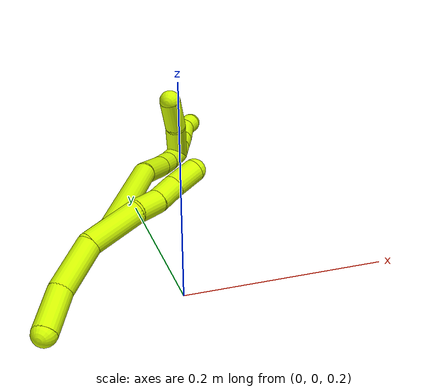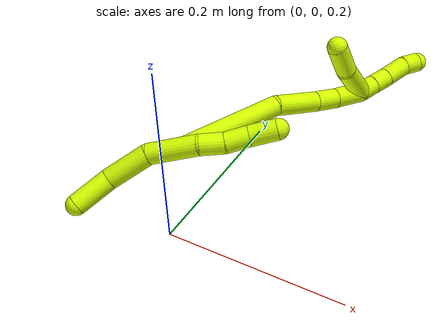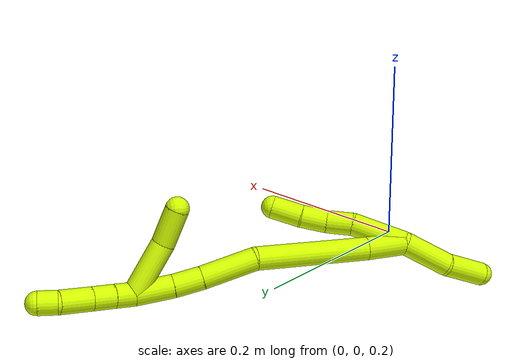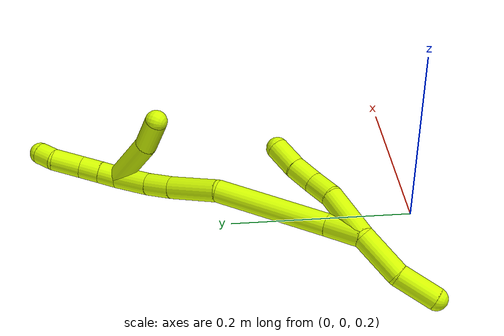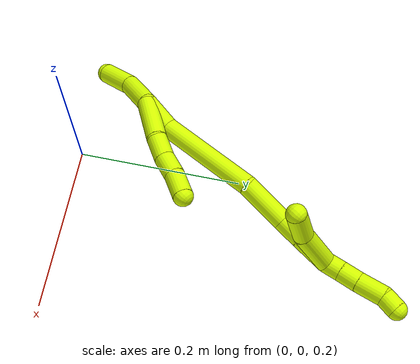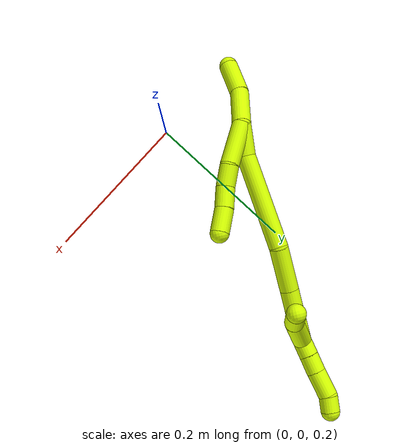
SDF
<sdf version="1.7">
 <world name="default">
  <model name="photoneo_s_sensor">
   <static>1</static>
   <pose>0 0 2 1.57079 1.57079 3.14159</pose>
   <link name="link">
    <inertial><mass>0.1</mass></inertial>
    <sensor name="sensor" type="depth">
     <update_rate>30</update_rate>
     <camera>
      <horizontal_fov>1.22</horizontal_fov>
      <image><width>1920</width><height>1200</height><format>B8G8R8</format></image>
      <clip><near>0.1</near><far>4</far></clip>
      <depth_camera><output>points</output></depth_camera>
     </camera>
     <plugin name="camera_plugin" filename="libgazebo_ros_depth_camera.so">
      <baseline>0.2</baseline>
      <alwaysOn>1</alwaysOn>
      <updateRate>0.0</updateRate>
      <cameraName>camera_ir</cameraName>
      <imageTopicName>/camera/color/image_raw</imageTopicName>
      <cameraInfoTopicName>/camera/color/camera_info</cameraInfoTopicName>
      <depthImageTopicName>/camera/depth/image_raw</depthImageTopicName>
      <depthImageCameraInfoTopicName>/camera/depth/camera_info</depthImageCameraInfoTopicName>
      <pointCloudTopicName>/camera/depth/points</pointCloudTopicName>
      <frameName>fr_optical</frameName>
      <pointCloudCutoff>0.1</pointCloudCutoff>
      <pointCloudCutoffMax>2.0</pointCloudCutoffMax>
      <distortionK1>0</distortionK1>
      <distortionK2>0</distortionK2>
      <distortionK3>0</distortionK3>
      <distortionT1>0</distortionT1>
      <distortionT2>0</distortionT2>
      <CxPrime>0</CxPrime>
      <Cx>0</Cx>
      <Cy>0</Cy>
      <focalLength>0</focalLength>
      <hackBaseline>0</hackBaseline>
     </plugin>
    </sensor>
   </link>
  </model>
  <model name="bin">
   <static>1</static>
   <link name="bottom">
    <collision name="collision-bottom">
     <pose>0 0 -0.01 0 -0 0</pose>
     <geometry><box><size>0.8 0.6 0.02</size></box></geometry>
     <surface>
      <friction><ode><mu>100</mu><mu2>100</mu2></ode></friction>
      <contact><collide_bitmask>65535</collide_bitmask></contact>
     </surface>
    </collision>
   </link>
   <link name="west_wall">
    <collision name="collision-west_wall">
     <pose>-0.41 0 0.1 0 -0 0</pose>
     <geometry><box><size>0.02 0.6 0.2</size></box></geometry>
     <surface>
      <friction><ode><mu>100</mu><mu2>100</mu2></ode></friction>
      <contact><collide_bitmask>65535</collide_bitmask></contact>
     </surface>
    </collision>
   </link>
   <link name="east_wall">
    <collision name="collision-east_wall">
     <pose>0.41 0 0.1 0 -0 0</pose>
     <geometry><box><size>0.02 0.6 0.2</size></box></geometry>
     <surface>
      <friction><ode><mu>100</mu><mu2>100</mu2></ode></friction>
      <contact><collide_bitmask>65535</collide_bitmask></contact>
     </surface>
    </collision>
   </link>
   <link name="south_wall">
    <collision name="collision-south_wall">
     <pose>0 -0.31 0.1 0 -0 0</pose>
     <geometry><box><size>0.8 0.02 0.2</size></box></geometry>
     <surface>
      <friction><ode><mu>100</mu><mu2>100</mu2></ode></friction>
      <contact><collide_bitmask>65535</collide_bitmask></contact>
     </surface>
    </collision>
   </link>
   <link name="north_wall">
    <collision name="collision-north_wall">
     <pose>0 0.31 0.1 0 -0 0</pose>
     <geometry><box><size>0.8 0.02 0.2</size></box></geometry>
     <surface>
      <friction><ode><mu>100</mu><mu2>100</mu2></ode></friction>
      <contact><collide_bitmask>65535</collide_bitmask></contact>
     </surface>
    </collision>
   </link>
  </model>
  <model name="15">
   <static>0</static>
   <link name="15">
    <collision name="collision-cylinder-e_1_2_8">
     <pose>0.006834 -0.014354 0.025186 0.518022 0.231509 0.061597</pose>
     <geometry><cylinder><radius>0.0125</radius><length>0.059567</length></cylinder></geometry>
     <surface>
      <friction><ode><mu>1.16</mu><mu2>1.16</mu2><slip1>0</slip1><slip2>0</slip2></ode></friction>
      <contact><ode><kp>1e+06</kp><kd>1</kd><max_vel>0</max_vel><min_depth>0.001</min_depth></ode></contact>
     </surface>
    </collision>
    <visual name="visual-cylinder-e_1_2_8">
     <pose>0.006834 -0.014354 0.025186 0.518022 0.231509 0.061597</pose>
     <geometry><cylinder><radius>0.0125</radius><length>0.059567</length></cylinder></geometry>
     <material><ambient>0.835294 1 0 1</ambient></material>
    </visual>
    <collision name="collision-cylinder-e_2_8_9">
     <pose>0.018208 -0.032513 0.063602 0.280012 0.318568 0.045271</pose>
     <geometry><cylinder><radius>0.0125</radius><length>0.028993</length></cylinder></geometry>
     <surface>
      <friction><ode><mu>1.16</mu><mu2>1.16</mu2><slip1>0</slip1><slip2>0</slip2></ode></friction>
      <contact><ode><kp>1e+06</kp><kd>1</kd><max_vel>0</max_vel><min_depth>0.001</min_depth></ode></contact>
     </surface>
    </collision>
    <visual name="visual-cylinder-e_2_8_9">
     <pose>0.018208 -0.032513 0.063602 0.280012 0.318568 0.045271</pose>
     <geometry><cylinder><radius>0.0125</radius><length>0.028993</length></cylinder></geometry>
     <material><ambient>0.835294 1 0 1</ambient></material>
    </visual>
    <collision name="collision-cylinder-e_3_9_10">
     <pose>0.024357 -0.040816 0.090288 0.32261 0.112934 0.018395</pose>
     <geometry><cylinder><radius>0.0125</radius><length>0.028557</length></cylinder></geometry>
     <surface>
      <friction><ode><mu>1.16</mu><mu2>1.16</mu2><slip1>0</slip1><slip2>0</slip2></ode></friction>
      <contact><ode><kp>1e+06</kp><kd>1</kd><max_vel>0</max_vel><min_depth>0.001</min_depth></ode></contact>
     </surface>
    </collision>
    <visual name="visual-cylinder-e_3_9_10">
     <pose>0.024357 -0.040816 0.090288 0.32261 0.112934 0.018395</pose>
     <geometry><cylinder><radius>0.0125</radius><length>0.028557</length></cylinder></geometry>
     <material><ambient>0.835294 1 0 1</ambient></material>
    </visual>
    <collision name="collision-cylinder-e_4_10_6">
     <pose>0.028786 -0.052323 0.118347 0.447506 0.172345 0.039312</pose>
     <geometry><cylinder><radius>0.0125</radius><length>0.032884</length></cylinder></geometry>
     <surface>
      <friction><ode><mu>1.16</mu><mu2>1.16</mu2><slip1>0</slip1><slip2>0</slip2></ode></friction>
      <contact><ode><kp>1e+06</kp><kd>1</kd><max_vel>0</max_vel><min_depth>0.001</min_depth></ode></contact>
     </surface>
    </collision>
    <visual name="visual-cylinder-e_4_10_6">
     <pose>0.028786 -0.052323 0.118347 0.447506 0.172345 0.039312</pose>
     <geometry><cylinder><radius>0.0125</radius><length>0.032884</length></cylinder></geometry>
     <material><ambient>0.835294 1 0 1</ambient></material>
    </visual>
    <collision name="collision-cylinder-e_1_2_11">
     <pose>0.004023 0.01257 -0.023345 -2.64767 0.150572 -0.581429</pose>
     <geometry><cylinder><radius>0.0125</radius><length>0.053634</length></cylinder></geometry>
     <surface>
      <friction><ode><mu>1.16</mu><mu2>1.16</mu2><slip1>0</slip1><slip2>0</slip2></ode></friction>
      <contact><ode><kp>1e+06</kp><kd>1</kd><max_vel>0</max_vel><min_depth>0.001</min_depth></ode></contact>
     </surface>
    </collision>
    <visual name="visual-cylinder-e_1_2_11">
     <pose>0.004023 0.01257 -0.023345 -2.64767 0.150572 -0.581429</pose>
     <geometry><cylinder><radius>0.0125</radius><length>0.053634</length></cylinder></geometry>
     <material><ambient>0.835294 1 0 1</ambient></material>
    </visual>
    <collision name="collision-cylinder-e_2_11_5">
     <pose>0.014863 0.030091 -0.068287 -2.9162 0.298491 -1.85117</pose>
     <geometry><cylinder><radius>0.0125</radius><length>0.046366</length></cylinder></geometry>
     <surface>
      <friction><ode><mu>1.16</mu><mu2>1.16</mu2><slip1>0</slip1><slip2>0</slip2></ode></friction>
      <contact><ode><kp>1e+06</kp><kd>1</kd><max_vel>0</max_vel><min_depth>0.001</min_depth></ode></contact>
     </surface>
    </collision>
    <visual name="visual-cylinder-e_2_11_5">
     <pose>0.014863 0.030091 -0.068287 -2.9162 0.298491 -1.85117</pose>
     <geometry><cylinder><radius>0.0125</radius><length>0.046366</length></cylinder></geometry>
     <material><ambient>0.835294 1 0 1</ambient></material>
    </visual>
    <collision name="collision-cylinder-e_1_2_12">
     <pose>0.003 0.000794 0.02095 -0.037898 0.142124 -0.002698</pose>
     <geometry><cylinder><radius>0.0125</radius><length>0.042358</length></cylinder></geometry>
     <surface>
      <friction><ode><mu>1.16</mu><mu2>1.16</mu2><slip1>0</slip1><slip2>0</slip2></ode></friction>
      <contact><ode><kp>1e+06</kp><kd>1</kd><max_vel>0</max_vel><min_depth>0.001</min_depth></ode></contact>
     </surface>
    </collision>
    <visual name="visual-cylinder-e_1_2_12">
     <pose>0.003 0.000794 0.02095 -0.037898 0.142124 -0.002698</pose>
     <geometry><cylinder><radius>0.0125</radius><length>0.042358</length></cylinder></geometry>
     <material><ambient>0.835294 1 0 1</ambient></material>
    </visual>
    <collision name="collision-cylinder-e_2_12_13">
     <pose>0.000348 0.004458 0.10496 -0.045468 -0.089296 0.002032</pose>
     <geometry><cylinder><radius>0.0125</radius><length>0.126755</length></cylinder></geometry>
     <surface>
      <friction><ode><mu>1.16</mu><mu2>1.16</mu2><slip1>0</slip1><slip2>0</slip2></ode></friction>
      <contact><ode><kp>1e+06</kp><kd>1</kd><max_vel>0</max_vel><min_depth>0.001</min_depth></ode></contact>
     </surface>
    </collision>
    <visual name="visual-cylinder-e_2_12_13">
     <pose>0.000348 0.004458 0.10496 -0.045468 -0.089296 0.002032</pose>
     <geometry><cylinder><radius>0.0125</radius><length>0.126755</length></cylinder></geometry>
     <material><ambient>0.835294 1 0 1</ambient></material>
    </visual>
    <collision name="collision-cylinder-e_3_13_14">
     <pose>-0.000762 0.014388 0.196419 -0.243687 0.153966 -0.01889</pose>
     <geometry><cylinder><radius>0.0125</radius><length>0.059228</length></cylinder></geometry>
     <surface>
      <friction><ode><mu>1.16</mu><mu2>1.16</mu2><slip1>0</slip1><slip2>0</slip2></ode></friction>
      <contact><ode><kp>1e+06</kp><kd>1</kd><max_vel>0</max_vel><min_depth>0.001</min_depth></ode></contact>
     </surface>
    </collision>
    <visual name="visual-cylinder-e_3_13_14">
     <pose>-0.000762 0.014388 0.196419 -0.243687 0.153966 -0.01889</pose>
     <geometry><cylinder><radius>0.0125</radius><length>0.059228</length></cylinder></geometry>
     <material><ambient>0.835294 1 0 1</ambient></material>
    </visual>
    <collision name="collision-cylinder-e_4_14_15">
     <pose>0.005654 0.024264 0.2398 -0.185774 0.122396 -0.011416</pose>
     <geometry><cylinder><radius>0.0125</radius><length>0.030719</length></cylinder></geometry>
     <surface>
      <friction><ode><mu>1.16</mu><mu2>1.16</mu2><slip1>0</slip1><slip2>0</slip2></ode></friction>
      <contact><ode><kp>1e+06</kp><kd>1</kd><max_vel>0</max_vel><min_depth>0.001</min_depth></ode></contact>
     </surface>
    </collision>
    <visual name="visual-cylinder-e_4_14_15">
     <pose>0.005654 0.024264 0.2398 -0.185774 0.122396 -0.011416</pose>
     <geometry><cylinder><radius>0.0125</radius><length>0.030719</length></cylinder></geometry>
     <material><ambient>0.835294 1 0 1</ambient></material>
    </visual>
    <collision name="collision-cylinder-e_5_15_1">
     <pose>0.008926 0.029448 0.275068 -0.116208 0.068268 -0.003973</pose>
     <geometry><cylinder><radius>0.0125</radius><length>0.04094</length></cylinder></geometry>
     <surface>
      <friction><ode><mu>1.16</mu><mu2>1.16</mu2><slip1>0</slip1><slip2>0</slip2></ode></friction>
      <contact><ode><kp>1e+06</kp><kd>1</kd><max_vel>0</max_vel><min_depth>0.001</min_depth></ode></contact>
     </surface>
    </collision>
    <visual name="visual-cylinder-e_5_15_1">
     <pose>0.008926 0.029448 0.275068 -0.116208 0.068268 -0.003973</pose>
     <geometry><cylinder><radius>0.0125</radius><length>0.04094</length></cylinder></geometry>
     <material><ambient>0.835294 1 0 1</ambient></material>
    </visual>
    <collision name="collision-cylinder-e_1_1_16">
     <pose>0.00846 0.0326 0.305753 -0.07526 -0.176717 0.00667</pose>
     <geometry><cylinder><radius>0.0125</radius><length>0.02119</length></cylinder></geometry>
     <surface>
      <friction><ode><mu>1.16</mu><mu2>1.16</mu2><slip1>0</slip1><slip2>0</slip2></ode></friction>
      <contact><ode><kp>1e+06</kp><kd>1</kd><max_vel>0</max_vel><min_depth>0.001</min_depth></ode></contact>
     </surface>
    </collision>
    <visual name="visual-cylinder-e_1_1_16">
     <pose>0.00846 0.0326 0.305753 -0.07526 -0.176717 0.00667</pose>
     <geometry><cylinder><radius>0.0125</radius><length>0.02119</length></cylinder></geometry>
     <material><ambient>0.835294 1 0 1</ambient></material>
    </visual>
    <collision name="collision-cylinder-e_2_16_17">
     <pose>0.004718 0.034334 0.327762 -0.081628 -0.159956 0.006546</pose>
     <geometry><cylinder><radius>0.0125</radius><length>0.023597</length></cylinder></geometry>
     <surface>
      <friction><ode><mu>1.16</mu><mu2>1.16</mu2><slip1>0</slip1><slip2>0</slip2></ode></friction>
      <contact><ode><kp>1e+06</kp><kd>1</kd><max_vel>0</max_vel><min_depth>0.001</min_depth></ode></contact>
     </surface>
    </collision>
    <visual name="visual-cylinder-e_2_16_17">
     <pose>0.004718 0.034334 0.327762 -0.081628 -0.159956 0.006546</pose>
     <geometry><cylinder><radius>0.0125</radius><length>0.023597</length></cylinder></geometry>
     <material><ambient>0.835294 1 0 1</ambient></material>
    </visual>
    <collision name="collision-cylinder-e_3_17_18">
     <pose>-0.000807 0.036717 0.356171 -0.085074 -0.212931 0.009097</pose>
     <geometry><cylinder><radius>0.0125</radius><length>0.0345</length></cylinder></geometry>
     <surface>
      <friction><ode><mu>1.16</mu><mu2>1.16</mu2><slip1>0</slip1><slip2>0</slip2></ode></friction>
      <contact><ode><kp>1e+06</kp><kd>1</kd><max_vel>0</max_vel><min_depth>0.001</min_depth></ode></contact>
     </surface>
    </collision>
    <visual name="visual-cylinder-e_3_17_18">
     <pose>-0.000807 0.036717 0.356171 -0.085074 -0.212931 0.009097</pose>
     <geometry><cylinder><radius>0.0125</radius><length>0.0345</length></cylinder></geometry>
     <material><ambient>0.835294 1 0 1</ambient></material>
    </visual>
    <collision name="collision-cylinder-e_4_18_4">
     <pose>-0.003644 0.037549 0.383278 0.058209 0.078051 0.002273</pose>
     <geometry><cylinder><radius>0.0125</radius><length>0.020713</length></cylinder></geometry>
     <surface>
      <friction><ode><mu>1.16</mu><mu2>1.16</mu2><slip1>0</slip1><slip2>0</slip2></ode></friction>
      <contact><ode><kp>1e+06</kp><kd>1</kd><max_vel>0</max_vel><min_depth>0.001</min_depth></ode></contact>
     </surface>
    </collision>
    <visual name="visual-cylinder-e_4_18_4">
     <pose>-0.003644 0.037549 0.383278 0.058209 0.078051 0.002273</pose>
     <geometry><cylinder><radius>0.0125</radius><length>0.020713</length></cylinder></geometry>
     <material><ambient>0.835294 1 0 1</ambient></material>
    </visual>
    <collision name="collision-cylinder-e_1_1_19">
     <pose>-0.002057 0.009426 0.279749 2.17941 -0.425855 -0.785354</pose>
     <geometry><cylinder><radius>0.0125</radius><length>0.059933</length></cylinder></geometry>
     <surface>
      <friction><ode><mu>1.16</mu><mu2>1.16</mu2><slip1>0</slip1><slip2>0</slip2></ode></friction>
      <contact><ode><kp>1e+06</kp><kd>1</kd><max_vel>0</max_vel><min_depth>0.001</min_depth></ode></contact>
     </surface>
    </collision>
    <visual name="visual-cylinder-e_1_1_19">
     <pose>-0.002057 0.009426 0.279749 2.17941 -0.425855 -0.785354</pose>
     <geometry><cylinder><radius>0.0125</radius><length>0.059933</length></cylinder></geometry>
     <material><ambient>0.835294 1 0 1</ambient></material>
    </visual>
    <collision name="collision-cylinder-e_2_19_3">
     <pose>-0.026803 -0.027102 0.257182 2.02855 -0.665319 -1.01391</pose>
     <geometry><cylinder><radius>0.0125</radius><length>0.040067</length></cylinder></geometry>
     <surface>
      <friction><ode><mu>1.16</mu><mu2>1.16</mu2><slip1>0</slip1><slip2>0</slip2></ode></friction>
      <contact><ode><kp>1e+06</kp><kd>1</kd><max_vel>0</max_vel><min_depth>0.001</min_depth></ode></contact>
     </surface>
    </collision>
    <visual name="visual-cylinder-e_2_19_3">
     <pose>-0.026803 -0.027102 0.257182 2.02855 -0.665319 -1.01391</pose>
     <geometry><cylinder><radius>0.0125</radius><length>0.040067</length></cylinder></geometry>
     <material><ambient>0.835294 1 0 1</ambient></material>
    </visual>
    <collision name="collision-sphere-3">
     <pose>-0.03917 -0.04124 0.250216 0 -0 0</pose>
     <geometry><sphere><radius>0.0125</radius></sphere></geometry>
     <surface>
      <friction><ode><mu>1.16</mu><mu2>1.16</mu2><slip1>0</slip1><slip2>0</slip2></ode></friction>
      <contact><ode><kp>1e+06</kp><kd>1</kd><max_vel>0</max_vel><min_depth>0.001</min_depth></ode></contact>
     </surface>
    </collision>
    <visual name="visual-sphere-3">
     <pose>-0.03917 -0.04124 0.250216 0 -0 0</pose>
     <geometry><sphere><radius>0.0125</radius></sphere></geometry>
     <material><ambient>0.835294 1 0 1</ambient></material>
    </visual>
    <collision name="collision-sphere-19">
     <pose>-0.014436 -0.012964 0.264147 0 -0 0</pose>
     <geometry><sphere><radius>0.0125</radius></sphere></geometry>
     <surface>
      <friction><ode><mu>1.16</mu><mu2>1.16</mu2><slip1>0</slip1><slip2>0</slip2></ode></friction>
      <contact><ode><kp>1e+06</kp><kd>1</kd><max_vel>0</max_vel><min_depth>0.001</min_depth></ode></contact>
     </surface>
    </collision>
    <visual name="visual-sphere-19">
     <pose>-0.014436 -0.012964 0.264147 0 -0 0</pose>
     <geometry><sphere><radius>0.0125</radius></sphere></geometry>
     <material><ambient>0.835294 1 0 1</ambient></material>
    </visual>
    <collision name="collision-sphere-11">
     <pose>0.008045 0.025139 -0.046689 0 -0 0</pose>
     <geometry><sphere><radius>0.0125</radius></sphere></geometry>
     <surface>
      <friction><ode><mu>1.16</mu><mu2>1.16</mu2><slip1>0</slip1><slip2>0</slip2></ode></friction>
      <contact><ode><kp>1e+06</kp><kd>1</kd><max_vel>0</max_vel><min_depth>0.001</min_depth></ode></contact>
     </surface>
    </collision>
    <visual name="visual-sphere-11">
     <pose>0.008045 0.025139 -0.046689 0 -0 0</pose>
     <geometry><sphere><radius>0.0125</radius></sphere></geometry>
     <material><ambient>0.835294 1 0 1</ambient></material>
    </visual>
    <collision name="collision-sphere-6">
     <pose>0.031606 -0.059333 0.13295 0 -0 0</pose>
     <geometry><sphere><radius>0.0125</radius></sphere></geometry>
     <surface>
      <friction><ode><mu>1.16</mu><mu2>1.16</mu2><slip1>0</slip1><slip2>0</slip2></ode></friction>
      <contact><ode><kp>1e+06</kp><kd>1</kd><max_vel>0</max_vel><min_depth>0.001</min_depth></ode></contact>
     </surface>
    </collision>
    <visual name="visual-sphere-6">
     <pose>0.031606 -0.059333 0.13295 0 -0 0</pose>
     <geometry><sphere><radius>0.0125</radius></sphere></geometry>
     <material><ambient>0.835294 1 0 1</ambient></material>
    </visual>
    <collision name="collision-sphere-10">
     <pose>0.025966 -0.045314 0.103744 0 -0 0</pose>
     <geometry><sphere><radius>0.0125</radius></sphere></geometry>
     <surface>
      <friction><ode><mu>1.16</mu><mu2>1.16</mu2><slip1>0</slip1><slip2>0</slip2></ode></friction>
      <contact><ode><kp>1e+06</kp><kd>1</kd><max_vel>0</max_vel><min_depth>0.001</min_depth></ode></contact>
     </surface>
    </collision>
    <visual name="visual-sphere-10">
     <pose>0.025966 -0.045314 0.103744 0 -0 0</pose>
     <geometry><sphere><radius>0.0125</radius></sphere></geometry>
     <material><ambient>0.835294 1 0 1</ambient></material>
    </visual>
    <collision name="collision-sphere-9">
     <pose>0.022748 -0.036318 0.076833 0 -0 0</pose>
     <geometry><sphere><radius>0.0125</radius></sphere></geometry>
     <surface>
      <friction><ode><mu>1.16</mu><mu2>1.16</mu2><slip1>0</slip1><slip2>0</slip2></ode></friction>
      <contact><ode><kp>1e+06</kp><kd>1</kd><max_vel>0</max_vel><min_depth>0.001</min_depth></ode></contact>
     </surface>
    </collision>
    <visual name="visual-sphere-9">
     <pose>0.022748 -0.036318 0.076833 0 -0 0</pose>
     <geometry><sphere><radius>0.0125</radius></sphere></geometry>
     <material><ambient>0.835294 1 0 1</ambient></material>
    </visual>
    <collision name="collision-sphere-2">
     <geometry><sphere><radius>0.0125</radius></sphere></geometry>
     <surface>
      <friction><ode><mu>1.16</mu><mu2>1.16</mu2><slip1>0</slip1><slip2>0</slip2></ode></friction>
      <contact><ode><kp>1e+06</kp><kd>1</kd><max_vel>0</max_vel><min_depth>0.001</min_depth></ode></contact>
     </surface>
    </collision>
    <visual name="visual-sphere-2">
     <geometry><sphere><radius>0.0125</radius></sphere></geometry>
     <material><ambient>0.835294 1 0 1</ambient></material>
    </visual>
    <collision name="collision-sphere-8">
     <pose>0.013667 -0.028709 0.050371 0 -0 0</pose>
     <geometry><sphere><radius>0.0125</radius></sphere></geometry>
     <surface>
      <friction><ode><mu>1.16</mu><mu2>1.16</mu2><slip1>0</slip1><slip2>0</slip2></ode></friction>
      <contact><ode><kp>1e+06</kp><kd>1</kd><max_vel>0</max_vel><min_depth>0.001</min_depth></ode></contact>
     </surface>
    </collision>
    <visual name="visual-sphere-8">
     <pose>0.013667 -0.028709 0.050371 0 -0 0</pose>
     <geometry><sphere><radius>0.0125</radius></sphere></geometry>
     <material><ambient>0.835294 1 0 1</ambient></material>
    </visual>
    <collision name="collision-sphere-5">
     <pose>0.021681 0.035043 -0.089884 0 -0 0</pose>
     <geometry><sphere><radius>0.0125</radius></sphere></geometry>
     <surface>
      <friction><ode><mu>1.16</mu><mu2>1.16</mu2><slip1>0</slip1><slip2>0</slip2></ode></friction>
      <contact><ode><kp>1e+06</kp><kd>1</kd><max_vel>0</max_vel><min_depth>0.001</min_depth></ode></contact>
     </surface>
    </collision>
    <visual name="visual-sphere-5">
     <pose>0.021681 0.035043 -0.089884 0 -0 0</pose>
     <geometry><sphere><radius>0.0125</radius></sphere></geometry>
     <material><ambient>0.835294 1 0 1</ambient></material>
    </visual>
    <collision name="collision-sphere-12">
     <pose>0.006 0.001589 0.0419 0 -0 0</pose>
     <geometry><sphere><radius>0.0125</radius></sphere></geometry>
     <surface>
      <friction><ode><mu>1.16</mu><mu2>1.16</mu2><slip1>0</slip1><slip2>0</slip2></ode></friction>
      <contact><ode><kp>1e+06</kp><kd>1</kd><max_vel>0</max_vel><min_depth>0.001</min_depth></ode></contact>
     </surface>
    </collision>
    <visual name="visual-sphere-12">
     <pose>0.006 0.001589 0.0419 0 -0 0</pose>
     <geometry><sphere><radius>0.0125</radius></sphere></geometry>
     <material><ambient>0.835294 1 0 1</ambient></material>
    </visual>
    <collision name="collision-sphere-13">
     <pose>-0.005304 0.007327 0.16802 0 -0 0</pose>
     <geometry><sphere><radius>0.0125</radius></sphere></geometry>
     <surface>
      <friction><ode><mu>1.16</mu><mu2>1.16</mu2><slip1>0</slip1><slip2>0</slip2></ode></friction>
      <contact><ode><kp>1e+06</kp><kd>1</kd><max_vel>0</max_vel><min_depth>0.001</min_depth></ode></contact>
     </surface>
    </collision>
    <visual name="visual-sphere-13">
     <pose>-0.005304 0.007327 0.16802 0 -0 0</pose>
     <geometry><sphere><radius>0.0125</radius></sphere></geometry>
     <material><ambient>0.835294 1 0 1</ambient></material>
    </visual>
    <collision name="collision-sphere-14">
     <pose>0.003779 0.021449 0.224818 0 -0 0</pose>
     <geometry><sphere><radius>0.0125</radius></sphere></geometry>
     <surface>
      <friction><ode><mu>1.16</mu><mu2>1.16</mu2><slip1>0</slip1><slip2>0</slip2></ode></friction>
      <contact><ode><kp>1e+06</kp><kd>1</kd><max_vel>0</max_vel><min_depth>0.001</min_depth></ode></contact>
     </surface>
    </collision>
    <visual name="visual-sphere-14">
     <pose>0.003779 0.021449 0.224818 0 -0 0</pose>
     <geometry><sphere><radius>0.0125</radius></sphere></geometry>
     <material><ambient>0.835294 1 0 1</ambient></material>
    </visual>
    <collision name="collision-sphere-15">
     <pose>0.00753 0.02708 0.254783 0 -0 0</pose>
     <geometry><sphere><radius>0.0125</radius></sphere></geometry>
     <surface>
      <friction><ode><mu>1.16</mu><mu2>1.16</mu2><slip1>0</slip1><slip2>0</slip2></ode></friction>
      <contact><ode><kp>1e+06</kp><kd>1</kd><max_vel>0</max_vel><min_depth>0.001</min_depth></ode></contact>
     </surface>
    </collision>
    <visual name="visual-sphere-15">
     <pose>0.00753 0.02708 0.254783 0 -0 0</pose>
     <geometry><sphere><radius>0.0125</radius></sphere></geometry>
     <material><ambient>0.835294 1 0 1</ambient></material>
    </visual>
    <collision name="collision-sphere-1">
     <pose>0.010322 0.031816 0.295352 0 -0 0</pose>
     <geometry><sphere><radius>0.0125</radius></sphere></geometry>
     <surface>
      <friction><ode><mu>1.16</mu><mu2>1.16</mu2><slip1>0</slip1><slip2>0</slip2></ode></friction>
      <contact><ode><kp>1e+06</kp><kd>1</kd><max_vel>0</max_vel><min_depth>0.001</min_depth></ode></contact>
     </surface>
    </collision>
    <visual name="visual-sphere-1">
     <pose>0.010322 0.031816 0.295352 0 -0 0</pose>
     <geometry><sphere><radius>0.0125</radius></sphere></geometry>
     <material><ambient>0.835294 1 0 1</ambient></material>
    </visual>
    <collision name="collision-sphere-18">
     <pose>-0.004452 0.038149 0.37297 0 -0 0</pose>
     <geometry><sphere><radius>0.0125</radius></sphere></geometry>
     <surface>
      <friction><ode><mu>1.16</mu><mu2>1.16</mu2><slip1>0</slip1><slip2>0</slip2></ode></friction>
      <contact><ode><kp>1e+06</kp><kd>1</kd><max_vel>0</max_vel><min_depth>0.001</min_depth></ode></contact>
     </surface>
    </collision>
    <visual name="visual-sphere-18">
     <pose>-0.004452 0.038149 0.37297 0 -0 0</pose>
     <geometry><sphere><radius>0.0125</radius></sphere></geometry>
     <material><ambient>0.835294 1 0 1</ambient></material>
    </visual>
    <collision name="collision-sphere-16">
     <pose>0.006597 0.033385 0.316153 0 -0 0</pose>
     <geometry><sphere><radius>0.0125</radius></sphere></geometry>
     <surface>
      <friction><ode><mu>1.16</mu><mu2>1.16</mu2><slip1>0</slip1><slip2>0</slip2></ode></friction>
      <contact><ode><kp>1e+06</kp><kd>1</kd><max_vel>0</max_vel><min_depth>0.001</min_depth></ode></contact>
     </surface>
    </collision>
    <visual name="visual-sphere-16">
     <pose>0.006597 0.033385 0.316153 0 -0 0</pose>
     <geometry><sphere><radius>0.0125</radius></sphere></geometry>
     <material><ambient>0.835294 1 0 1</ambient></material>
    </visual>
    <collision name="collision-sphere-17">
     <pose>0.002839 0.035284 0.339371 0 -0 0</pose>
     <geometry><sphere><radius>0.0125</radius></sphere></geometry>
     <surface>
      <friction><ode><mu>1.16</mu><mu2>1.16</mu2><slip1>0</slip1><slip2>0</slip2></ode></friction>
      <contact><ode><kp>1e+06</kp><kd>1</kd><max_vel>0</max_vel><min_depth>0.001</min_depth></ode></contact>
     </surface>
    </collision>
    <visual name="visual-sphere-17">
     <pose>0.002839 0.035284 0.339371 0 -0 0</pose>
     <geometry><sphere><radius>0.0125</radius></sphere></geometry>
     <material><ambient>0.835294 1 0 1</ambient></material>
    </visual>
    <collision name="collision-sphere-4">
     <pose>-0.002837 0.036948 0.393585 0 -0 0</pose>
     <geometry><sphere><radius>0.0125</radius></sphere></geometry>
     <surface>
      <friction><ode><mu>1.16</mu><mu2>1.16</mu2><slip1>0</slip1><slip2>0</slip2></ode></friction>
      <contact><ode><kp>1e+06</kp><kd>1</kd><max_vel>0</max_vel><min_depth>0.001</min_depth></ode></contact>
     </surface>
    </collision>
    <visual name="visual-sphere-4">
     <pose>-0.002837 0.036948 0.393585 0 -0 0</pose>
     <geometry><sphere><radius>0.0125</radius></sphere></geometry>
     <material><ambient>0.835294 1 0 1</ambient></material>
    </visual>
    <inertial>
     <pose>0.004183 0.005083 0.148479 0 -0 0</pose>
     <mass>0.75</mass>
     <inertia>
      <ixx>0.000244</ixx>
      <ixy>0</ixy>
      <ixz>0</ixz>
      <iyy>0.000202</iyy>
      <iyz>0</iyz>
      <izz>5.2e-05</izz>
     </inertia>
    </inertial>
   </link>
   <pose>-0.072165 0.069126 0.230875 -1.51848 0.702307 -0.557446</pose>
  </model>
 </world>
</sdf>
